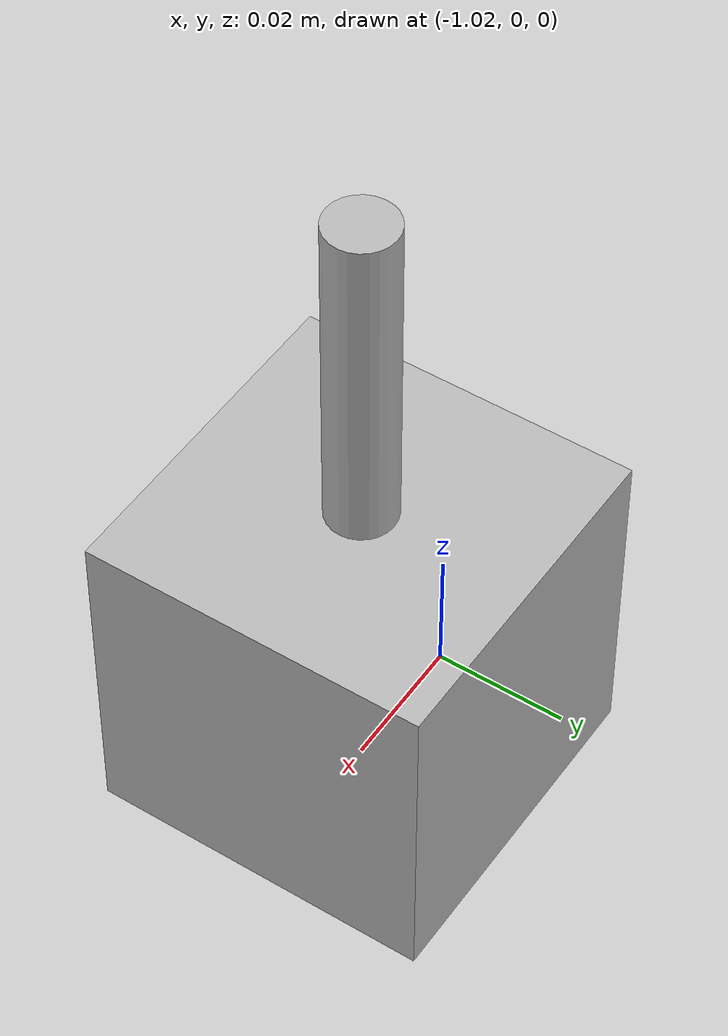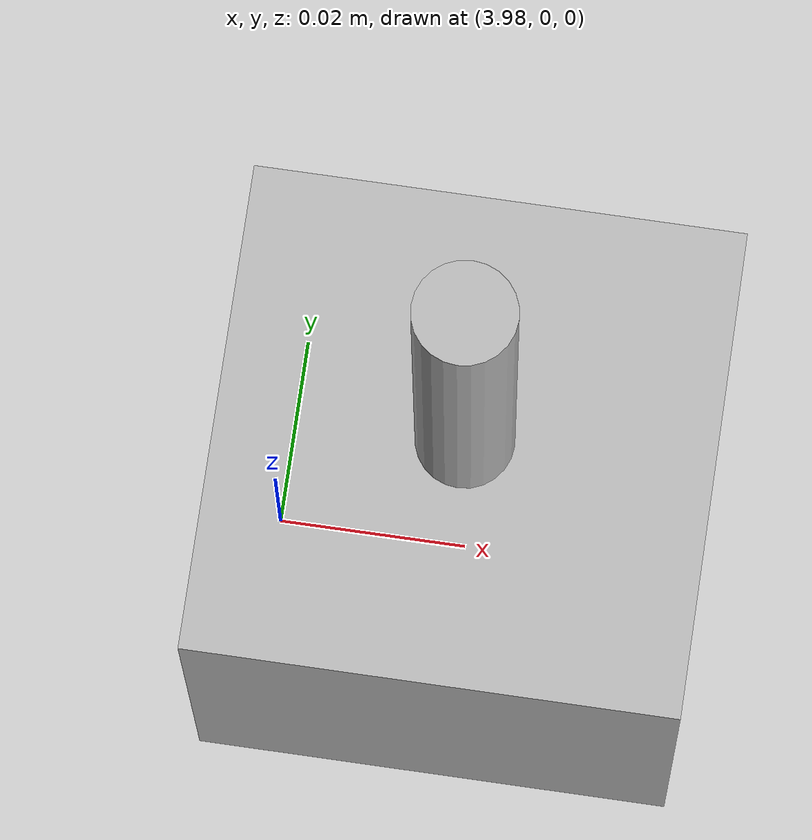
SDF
<sdf version="1.5">
 <world name="default">
  <include><uri>model://sun</uri></include>
  <include><uri>model://asphalt_plane</uri></include>
  <model name="wirelessTransmitter">
   <static>true</static>
   <pose>-1 0 0.025 0 0 0</pose>
   <link name="link">
    <inertial><mass>0.1</mass></inertial>
    <visual name="base"><geometry><box><size>.05 .05 .05</size></box></geometry></visual>
    <visual name="antenna">
     <pose>0 0 .04 0 0 0</pose>
     <geometry><cylinder><radius>.005</radius><length>.07</length></cylinder></geometry>
    </visual>
    <sensor name="wirelessTransmitter" type="wireless_transmitter">
     <always_on>1</always_on>
     <update_rate>1</update_rate>
     <visualize>true</visualize>
     <transceiver><essid>osrf</essid><frequency>2412.0</frequency><power>14.5</power><gain>2.6</gain></transceiver>
    </sensor>
   </link>
  </model>
  <model name="wirelessTransmitter">
   <static>true</static>
   <pose>4 0 0.025 0 0 0</pose>
   <link name="link">
    <inertial><mass>0.1</mass></inertial>
    <visual name="base"><geometry><box><size>.05 .05 .05</size></box></geometry></visual>
    <visual name="antenna">
     <pose>0 0 .04 0 0 0</pose>
     <geometry><cylinder><radius>.005</radius><length>.07</length></cylinder></geometry>
    </visual>
    <sensor name="wirelessTransmitter" type="wireless_transmitter">
     <always_on>1</always_on>
     <update_rate>1</update_rate>
     <visualize>true</visualize>
     <transceiver>
      <essid>osrf2</essid>
      <frequency>2484.0</frequency>
      <power>14.5</power>
      <gain>2.6</gain>
     </transceiver>
    </sensor>
   </link>
  </model>
  <include><uri>model://ground_plane</uri></include>
  <include><uri>model://asphalt_plane</uri></include>
  <physics name="default_physics" default="0" type="ode">
   <gravity>0 0 -9.8066</gravity>
   <ode>
    <solver>
     <type>quick</type>
     <iters>10</iters>
     <sor>1.3</sor>
     <use_dynamic_moi_rescaling>0</use_dynamic_moi_rescaling>
    </solver>
    <constraints>
     <cfm>0</cfm>
     <erp>0.2</erp>
     <contact_max_correcting_vel>100</contact_max_correcting_vel>
     <contact_surface_layer>0.001</contact_surface_layer>
    </constraints>
   </ode>
   <max_step_size>0.002</max_step_size>
   <real_time_factor>1</real_time_factor>
   <real_time_update_rate>500</real_time_update_rate>
   <magnetic_field>6.0e-6 2.3e-5 -4.2e-5</magnetic_field>
  </physics>
 </world>
</sdf>
